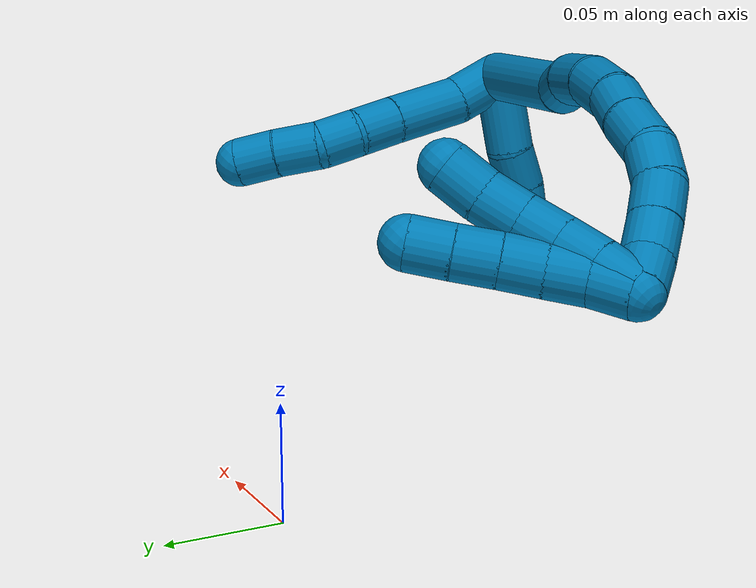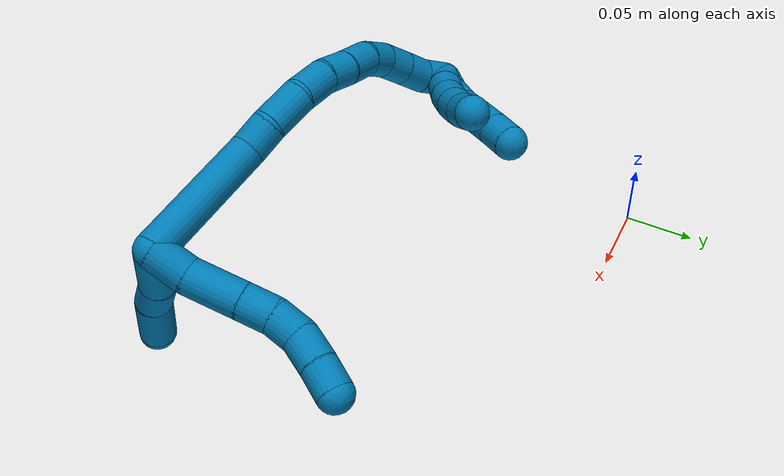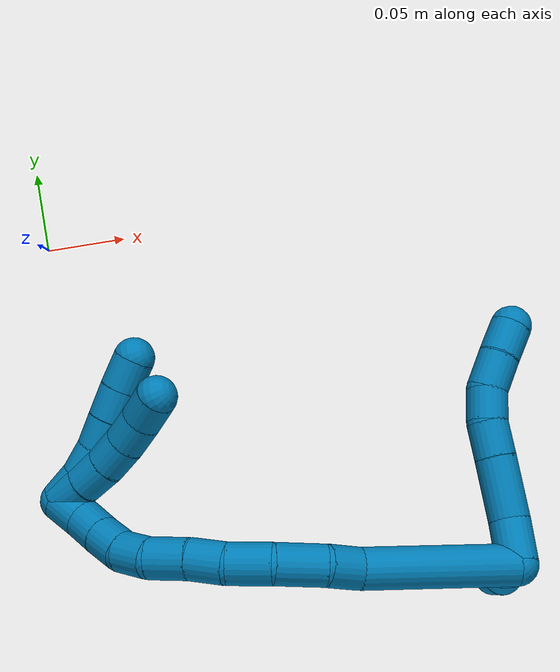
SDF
<sdf version="1.7">
 <world name="default">
  <model name="9">
   <static>0</static>
   <link name="9">
    <collision name="collision-cylinder-e_1_2_8">
     <pose>-0.004805 0.012566 0.000964 -1.49425 -0.364227 0.33789</pose>
     <geometry><cylinder><radius>0.0125</radius><length>0.026976</length></cylinder></geometry>
     <surface>
      <friction><ode><mu>1.16</mu><mu2>1.16</mu2><slip1>0</slip1><slip2>0</slip2></ode></friction>
      <contact><ode><kp>1e+06</kp><kd>1</kd><max_vel>0</max_vel><min_depth>0.001</min_depth></ode></contact>
     </surface>
    </collision>
    <visual name="visual-cylinder-e_1_2_8">
     <pose>-0.004805 0.012566 0.000964 -1.49425 -0.364227 0.33789</pose>
     <geometry><cylinder><radius>0.0125</radius><length>0.026976</length></cylinder></geometry>
     <material><ambient>0 0.490196 0.709804 1</ambient></material>
    </visual>
    <collision name="collision-cylinder-e_2_8_9">
     <pose>-0.020427 0.040636 0.004311 -1.41829 -0.603716 0.522148</pose>
     <geometry><cylinder><radius>0.0125</radius><length>0.038109</length></cylinder></geometry>
     <surface>
      <friction><ode><mu>1.16</mu><mu2>1.16</mu2><slip1>0</slip1><slip2>0</slip2></ode></friction>
      <contact><ode><kp>1e+06</kp><kd>1</kd><max_vel>0</max_vel><min_depth>0.001</min_depth></ode></contact>
     </surface>
    </collision>
    <visual name="visual-cylinder-e_2_8_9">
     <pose>-0.020427 0.040636 0.004311 -1.41829 -0.603716 0.522148</pose>
     <geometry><cylinder><radius>0.0125</radius><length>0.038109</length></cylinder></geometry>
     <material><ambient>0 0.490196 0.709804 1</ambient></material>
    </visual>
    <collision name="collision-cylinder-e_3_9_10">
     <pose>-0.037318 0.065129 0.007893 -1.43818 -0.590176 0.520157</pose>
     <geometry><cylinder><radius>0.0125</radius><length>0.021828</length></cylinder></geometry>
     <surface>
      <friction><ode><mu>1.16</mu><mu2>1.16</mu2><slip1>0</slip1><slip2>0</slip2></ode></friction>
      <contact><ode><kp>1e+06</kp><kd>1</kd><max_vel>0</max_vel><min_depth>0.001</min_depth></ode></contact>
     </surface>
    </collision>
    <visual name="visual-cylinder-e_3_9_10">
     <pose>-0.037318 0.065129 0.007893 -1.43818 -0.590176 0.520157</pose>
     <geometry><cylinder><radius>0.0125</radius><length>0.021828</length></cylinder></geometry>
     <material><ambient>0 0.490196 0.709804 1</ambient></material>
    </visual>
    <collision name="collision-cylinder-e_4_10_11">
     <pose>-0.047385 0.08293 0.011775 -1.2752 -0.409016 0.304918</pose>
     <geometry><cylinder><radius>0.0125</radius><length>0.020082</length></cylinder></geometry>
     <surface>
      <friction><ode><mu>1.16</mu><mu2>1.16</mu2><slip1>0</slip1><slip2>0</slip2></ode></friction>
      <contact><ode><kp>1e+06</kp><kd>1</kd><max_vel>0</max_vel><min_depth>0.001</min_depth></ode></contact>
     </surface>
    </collision>
    <visual name="visual-cylinder-e_4_10_11">
     <pose>-0.047385 0.08293 0.011775 -1.2752 -0.409016 0.304918</pose>
     <geometry><cylinder><radius>0.0125</radius><length>0.020082</length></cylinder></geometry>
     <material><ambient>0 0.490196 0.709804 1</ambient></material>
    </visual>
    <collision name="collision-cylinder-e_5_11_12">
     <pose>-0.05381 0.100823 0.020612 -0.975267 -0.218222 0.116066</pose>
     <geometry><cylinder><radius>0.0125</radius><length>0.022468</length></cylinder></geometry>
     <surface>
      <friction><ode><mu>1.16</mu><mu2>1.16</mu2><slip1>0</slip1><slip2>0</slip2></ode></friction>
      <contact><ode><kp>1e+06</kp><kd>1</kd><max_vel>0</max_vel><min_depth>0.001</min_depth></ode></contact>
     </surface>
    </collision>
    <visual name="visual-cylinder-e_5_11_12">
     <pose>-0.05381 0.100823 0.020612 -0.975267 -0.218222 0.116066</pose>
     <geometry><cylinder><radius>0.0125</radius><length>0.022468</length></cylinder></geometry>
     <material><ambient>0 0.490196 0.709804 1</ambient></material>
    </visual>
    <collision name="collision-cylinder-e_6_12_6">
     <pose>-0.057705 0.11846 0.032248 -1.00083 -0.142943 0.078261</pose>
     <geometry><cylinder><radius>0.0125</radius><length>0.020537</length></cylinder></geometry>
     <surface>
      <friction><ode><mu>1.16</mu><mu2>1.16</mu2><slip1>0</slip1><slip2>0</slip2></ode></friction>
      <contact><ode><kp>1e+06</kp><kd>1</kd><max_vel>0</max_vel><min_depth>0.001</min_depth></ode></contact>
     </surface>
    </collision>
    <visual name="visual-cylinder-e_6_12_6">
     <pose>-0.057705 0.11846 0.032248 -1.00083 -0.142943 0.078261</pose>
     <geometry><cylinder><radius>0.0125</radius><length>0.020537</length></cylinder></geometry>
     <material><ambient>0 0.490196 0.709804 1</ambient></material>
    </visual>
    <collision name="collision-cylinder-e_1_2_13">
     <pose>0.012883 0.011183 -0.010337 -2.31692 0.702156 -1.39416</pose>
     <geometry><cylinder><radius>0.0125</radius><length>0.039895</length></cylinder></geometry>
     <surface>
      <friction><ode><mu>1.16</mu><mu2>1.16</mu2><slip1>0</slip1><slip2>0</slip2></ode></friction>
      <contact><ode><kp>1e+06</kp><kd>1</kd><max_vel>0</max_vel><min_depth>0.001</min_depth></ode></contact>
     </surface>
    </collision>
    <visual name="visual-cylinder-e_1_2_13">
     <pose>0.012883 0.011183 -0.010337 -2.31692 0.702156 -1.39416</pose>
     <geometry><cylinder><radius>0.0125</radius><length>0.039895</length></cylinder></geometry>
     <material><ambient>0 0.490196 0.709804 1</ambient></material>
    </visual>
    <collision name="collision-cylinder-e_2_13_14">
     <pose>0.034499 0.027073 -0.025614 -2.38032 0.907549 -1.76741</pose>
     <geometry><cylinder><radius>0.0125</radius><length>0.022164</length></cylinder></geometry>
     <surface>
      <friction><ode><mu>1.16</mu><mu2>1.16</mu2><slip1>0</slip1><slip2>0</slip2></ode></friction>
      <contact><ode><kp>1e+06</kp><kd>1</kd><max_vel>0</max_vel><min_depth>0.001</min_depth></ode></contact>
     </surface>
    </collision>
    <visual name="visual-cylinder-e_2_13_14">
     <pose>0.034499 0.027073 -0.025614 -2.38032 0.907549 -1.76741</pose>
     <geometry><cylinder><radius>0.0125</radius><length>0.022164</length></cylinder></geometry>
     <material><ambient>0 0.490196 0.709804 1</ambient></material>
    </visual>
    <collision name="collision-cylinder-e_3_14_5">
     <pose>0.05561 0.042894 -0.039671 -2.25781 0.710915 -1.33065</pose>
     <geometry><cylinder><radius>0.0125</radius><length>0.037942</length></cylinder></geometry>
     <surface>
      <friction><ode><mu>1.16</mu><mu2>1.16</mu2><slip1>0</slip1><slip2>0</slip2></ode></friction>
      <contact><ode><kp>1e+06</kp><kd>1</kd><max_vel>0</max_vel><min_depth>0.001</min_depth></ode></contact>
     </surface>
    </collision>
    <visual name="visual-cylinder-e_3_14_5">
     <pose>0.05561 0.042894 -0.039671 -2.25781 0.710915 -1.33065</pose>
     <geometry><cylinder><radius>0.0125</radius><length>0.037942</length></cylinder></geometry>
     <material><ambient>0 0.490196 0.709804 1</ambient></material>
    </visual>
    <collision name="collision-cylinder-e_1_2_15">
     <pose>-0.029139 -0.005591 -0.036042 2.98771 -0.674073 -2.70846</pose>
     <geometry><cylinder><radius>0.0125</radius><length>0.093367</length></cylinder></geometry>
     <surface>
      <friction><ode><mu>1.16</mu><mu2>1.16</mu2><slip1>0</slip1><slip2>0</slip2></ode></friction>
      <contact><ode><kp>1e+06</kp><kd>1</kd><max_vel>0</max_vel><min_depth>0.001</min_depth></ode></contact>
     </surface>
    </collision>
    <visual name="visual-cylinder-e_1_2_15">
     <pose>-0.029139 -0.005591 -0.036042 2.98771 -0.674073 -2.70846</pose>
     <geometry><cylinder><radius>0.0125</radius><length>0.093367</length></cylinder></geometry>
     <material><ambient>0 0.490196 0.709804 1</ambient></material>
    </visual>
    <collision name="collision-cylinder-e_2_15_16">
     <pose>-0.067122 -0.013394 -0.077859 2.77561 -0.960612 -2.45899</pose>
     <geometry><cylinder><radius>0.0125</radius><length>0.021583</length></cylinder></geometry>
     <surface>
      <friction><ode><mu>1.16</mu><mu2>1.16</mu2><slip1>0</slip1><slip2>0</slip2></ode></friction>
      <contact><ode><kp>1e+06</kp><kd>1</kd><max_vel>0</max_vel><min_depth>0.001</min_depth></ode></contact>
     </surface>
    </collision>
    <visual name="visual-cylinder-e_2_15_16">
     <pose>-0.067122 -0.013394 -0.077859 2.77561 -0.960612 -2.45899</pose>
     <geometry><cylinder><radius>0.0125</radius><length>0.021583</length></cylinder></geometry>
     <material><ambient>0 0.490196 0.709804 1</ambient></material>
    </visual>
    <collision name="collision-cylinder-e_3_16_17">
     <pose>-0.086211 -0.017103 -0.094795 3.00835 -0.73814 -2.79996</pose>
     <geometry><cylinder><radius>0.0125</radius><length>0.030449</length></cylinder></geometry>
     <surface>
      <friction><ode><mu>1.16</mu><mu2>1.16</mu2><slip1>0</slip1><slip2>0</slip2></ode></friction>
      <contact><ode><kp>1e+06</kp><kd>1</kd><max_vel>0</max_vel><min_depth>0.001</min_depth></ode></contact>
     </surface>
    </collision>
    <visual name="visual-cylinder-e_3_16_17">
     <pose>-0.086211 -0.017103 -0.094795 3.00835 -0.73814 -2.79996</pose>
     <geometry><cylinder><radius>0.0125</radius><length>0.030449</length></cylinder></geometry>
     <material><ambient>0 0.490196 0.709804 1</ambient></material>
    </visual>
    <collision name="collision-cylinder-e_4_17_18">
     <pose>-0.103161 -0.018169 -0.117531 -3.10443 -0.524845 3.00346</pose>
     <geometry><cylinder><radius>0.0125</radius><length>0.026766</length></cylinder></geometry>
     <surface>
      <friction><ode><mu>1.16</mu><mu2>1.16</mu2><slip1>0</slip1><slip2>0</slip2></ode></friction>
      <contact><ode><kp>1e+06</kp><kd>1</kd><max_vel>0</max_vel><min_depth>0.001</min_depth></ode></contact>
     </surface>
    </collision>
    <visual name="visual-cylinder-e_4_17_18">
     <pose>-0.103161 -0.018169 -0.117531 -3.10443 -0.524845 3.00346</pose>
     <geometry><cylinder><radius>0.0125</radius><length>0.026766</length></cylinder></geometry>
     <material><ambient>0 0.490196 0.709804 1</ambient></material>
    </visual>
    <collision name="collision-cylinder-e_5_18_19">
     <pose>-0.114458 -0.015134 -0.138837 -2.88008 -0.427574 2.05234</pose>
     <geometry><cylinder><radius>0.0125</radius><length>0.022144</length></cylinder></geometry>
     <surface>
      <friction><ode><mu>1.16</mu><mu2>1.16</mu2><slip1>0</slip1><slip2>0</slip2></ode></friction>
      <contact><ode><kp>1e+06</kp><kd>1</kd><max_vel>0</max_vel><min_depth>0.001</min_depth></ode></contact>
     </surface>
    </collision>
    <visual name="visual-cylinder-e_5_18_19">
     <pose>-0.114458 -0.015134 -0.138837 -2.88008 -0.427574 2.05234</pose>
     <geometry><cylinder><radius>0.0125</radius><length>0.022144</length></cylinder></geometry>
     <material><ambient>0 0.490196 0.709804 1</ambient></material>
    </visual>
    <collision name="collision-cylinder-e_6_19_20">
     <pose>-0.12332 -0.010365 -0.160164 -2.95702 -0.34737 2.17083</pose>
     <geometry><cylinder><radius>0.0125</radius><length>0.025088</length></cylinder></geometry>
     <surface>
      <friction><ode><mu>1.16</mu><mu2>1.16</mu2><slip1>0</slip1><slip2>0</slip2></ode></friction>
      <contact><ode><kp>1e+06</kp><kd>1</kd><max_vel>0</max_vel><min_depth>0.001</min_depth></ode></contact>
     </surface>
    </collision>
    <visual name="visual-cylinder-e_6_19_20">
     <pose>-0.12332 -0.010365 -0.160164 -2.95702 -0.34737 2.17083</pose>
     <geometry><cylinder><radius>0.0125</radius><length>0.025088</length></cylinder></geometry>
     <material><ambient>0 0.490196 0.709804 1</ambient></material>
    </visual>
    <collision name="collision-cylinder-e_7_20_21">
     <pose>-0.129696 -0.00354 -0.180572 -2.6552 -0.208179 0.797056</pose>
     <geometry><cylinder><radius>0.0125</radius><length>0.020379</length></cylinder></geometry>
     <surface>
      <friction><ode><mu>1.16</mu><mu2>1.16</mu2><slip1>0</slip1><slip2>0</slip2></ode></friction>
      <contact><ode><kp>1e+06</kp><kd>1</kd><max_vel>0</max_vel><min_depth>0.001</min_depth></ode></contact>
     </surface>
    </collision>
    <visual name="visual-cylinder-e_7_20_21">
     <pose>-0.129696 -0.00354 -0.180572 -2.6552 -0.208179 0.797056</pose>
     <geometry><cylinder><radius>0.0125</radius><length>0.020379</length></cylinder></geometry>
     <material><ambient>0 0.490196 0.709804 1</ambient></material>
    </visual>
    <collision name="collision-cylinder-e_8_21_22">
     <pose>-0.134063 0.008184 -0.196097 -2.33064 -0.227977 0.521268</pose>
     <geometry><cylinder><radius>0.0125</radius><length>0.020005</length></cylinder></geometry>
     <surface>
      <friction><ode><mu>1.16</mu><mu2>1.16</mu2><slip1>0</slip1><slip2>0</slip2></ode></friction>
      <contact><ode><kp>1e+06</kp><kd>1</kd><max_vel>0</max_vel><min_depth>0.001</min_depth></ode></contact>
     </surface>
    </collision>
    <visual name="visual-cylinder-e_8_21_22">
     <pose>-0.134063 0.008184 -0.196097 -2.33064 -0.227977 0.521268</pose>
     <geometry><cylinder><radius>0.0125</radius><length>0.020005</length></cylinder></geometry>
     <material><ambient>0 0.490196 0.709804 1</ambient></material>
    </visual>
    <collision name="collision-cylinder-e_9_22_23">
     <pose>-0.138773 0.022656 -0.209214 -2.28377 -0.24509 0.526163</pose>
     <geometry><cylinder><radius>0.0125</radius><length>0.020191</length></cylinder></geometry>
     <surface>
      <friction><ode><mu>1.16</mu><mu2>1.16</mu2><slip1>0</slip1><slip2>0</slip2></ode></friction>
      <contact><ode><kp>1e+06</kp><kd>1</kd><max_vel>0</max_vel><min_depth>0.001</min_depth></ode></contact>
     </surface>
    </collision>
    <visual name="visual-cylinder-e_9_22_23">
     <pose>-0.138773 0.022656 -0.209214 -2.28377 -0.24509 0.526163</pose>
     <geometry><cylinder><radius>0.0125</radius><length>0.020191</length></cylinder></geometry>
     <material><ambient>0 0.490196 0.709804 1</ambient></material>
    </visual>
    <collision name="collision-cylinder-e_10_23_1">
     <pose>-0.145852 0.036565 -0.221668 -2.32004 -0.480614 1.02493</pose>
     <geometry><cylinder><radius>0.0125</radius><length>0.020028</length></cylinder></geometry>
     <surface>
      <friction><ode><mu>1.16</mu><mu2>1.16</mu2><slip1>0</slip1><slip2>0</slip2></ode></friction>
      <contact><ode><kp>1e+06</kp><kd>1</kd><max_vel>0</max_vel><min_depth>0.001</min_depth></ode></contact>
     </surface>
    </collision>
    <visual name="visual-cylinder-e_10_23_1">
     <pose>-0.145852 0.036565 -0.221668 -2.32004 -0.480614 1.02493</pose>
     <geometry><cylinder><radius>0.0125</radius><length>0.020028</length></cylinder></geometry>
     <material><ambient>0 0.490196 0.709804 1</ambient></material>
    </visual>
    <collision name="collision-cylinder-e_1_1_24">
     <pose>-0.151824 0.044447 -0.217903 -0.139744 -0.134678 0.00944</pose>
     <geometry><cylinder><radius>0.0125</radius><length>0.02</length></cylinder></geometry>
     <surface>
      <friction><ode><mu>1.16</mu><mu2>1.16</mu2><slip1>0</slip1><slip2>0</slip2></ode></friction>
      <contact><ode><kp>1e+06</kp><kd>1</kd><max_vel>0</max_vel><min_depth>0.001</min_depth></ode></contact>
     </surface>
    </collision>
    <visual name="visual-cylinder-e_1_1_24">
     <pose>-0.151824 0.044447 -0.217903 -0.139744 -0.134678 0.00944</pose>
     <geometry><cylinder><radius>0.0125</radius><length>0.02</length></cylinder></geometry>
     <material><ambient>0 0.490196 0.709804 1</ambient></material>
    </visual>
    <collision name="collision-cylinder-e_2_24_25">
     <pose>-0.154823 0.047782 -0.198423 -0.199503 -0.166306 0.016683</pose>
     <geometry><cylinder><radius>0.0125</radius><length>0.02</length></cylinder></geometry>
     <surface>
      <friction><ode><mu>1.16</mu><mu2>1.16</mu2><slip1>0</slip1><slip2>0</slip2></ode></friction>
      <contact><ode><kp>1e+06</kp><kd>1</kd><max_vel>0</max_vel><min_depth>0.001</min_depth></ode></contact>
     </surface>
    </collision>
    <visual name="visual-cylinder-e_2_24_25">
     <pose>-0.154823 0.047782 -0.198423 -0.199503 -0.166306 0.016683</pose>
     <geometry><cylinder><radius>0.0125</radius><length>0.02</length></cylinder></geometry>
     <material><ambient>0 0.490196 0.709804 1</ambient></material>
    </visual>
    <collision name="collision-cylinder-e_3_25_26">
     <pose>-0.159315 0.052021 -0.179444 -0.240543 -0.2877 0.035008</pose>
     <geometry><cylinder><radius>0.0125</radius><length>0.02</length></cylinder></geometry>
     <surface>
      <friction><ode><mu>1.16</mu><mu2>1.16</mu2><slip1>0</slip1><slip2>0</slip2></ode></friction>
      <contact><ode><kp>1e+06</kp><kd>1</kd><max_vel>0</max_vel><min_depth>0.001</min_depth></ode></contact>
     </surface>
    </collision>
    <visual name="visual-cylinder-e_3_25_26">
     <pose>-0.159315 0.052021 -0.179444 -0.240543 -0.2877 0.035008</pose>
     <geometry><cylinder><radius>0.0125</radius><length>0.02</length></cylinder></geometry>
     <material><ambient>0 0.490196 0.709804 1</ambient></material>
    </visual>
    <collision name="collision-cylinder-e_4_26_27">
     <pose>-0.165979 0.056372 -0.161126 -0.225593 -0.392597 0.045045</pose>
     <geometry><cylinder><radius>0.0125</radius><length>0.02</length></cylinder></geometry>
     <surface>
      <friction><ode><mu>1.16</mu><mu2>1.16</mu2><slip1>0</slip1><slip2>0</slip2></ode></friction>
      <contact><ode><kp>1e+06</kp><kd>1</kd><max_vel>0</max_vel><min_depth>0.001</min_depth></ode></contact>
     </surface>
    </collision>
    <visual name="visual-cylinder-e_4_26_27">
     <pose>-0.165979 0.056372 -0.161126 -0.225593 -0.392597 0.045045</pose>
     <geometry><cylinder><radius>0.0125</radius><length>0.02</length></cylinder></geometry>
     <material><ambient>0 0.490196 0.709804 1</ambient></material>
    </visual>
    <collision name="collision-cylinder-e_5_27_4">
     <pose>-0.174443 0.059406 -0.143315 -0.109491 -0.482286 0.026952</pose>
     <geometry><cylinder><radius>0.0125</radius><length>0.02</length></cylinder></geometry>
     <surface>
      <friction><ode><mu>1.16</mu><mu2>1.16</mu2><slip1>0</slip1><slip2>0</slip2></ode></friction>
      <contact><ode><kp>1e+06</kp><kd>1</kd><max_vel>0</max_vel><min_depth>0.001</min_depth></ode></contact>
     </surface>
    </collision>
    <visual name="visual-cylinder-e_5_27_4">
     <pose>-0.174443 0.059406 -0.143315 -0.109491 -0.482286 0.026952</pose>
     <geometry><cylinder><radius>0.0125</radius><length>0.02</length></cylinder></geometry>
     <material><ambient>0 0.490196 0.709804 1</ambient></material>
    </visual>
    <collision name="collision-cylinder-e_1_1_28">
     <pose>-0.152166 0.047422 -0.218873 -0.457686 -0.169231 0.039507</pose>
     <geometry><cylinder><radius>0.0125</radius><length>0.02</length></cylinder></geometry>
     <surface>
      <friction><ode><mu>1.16</mu><mu2>1.16</mu2><slip1>0</slip1><slip2>0</slip2></ode></friction>
      <contact><ode><kp>1e+06</kp><kd>1</kd><max_vel>0</max_vel><min_depth>0.001</min_depth></ode></contact>
     </surface>
    </collision>
    <visual name="visual-cylinder-e_1_1_28">
     <pose>-0.152166 0.047422 -0.218873 -0.457686 -0.169231 0.039507</pose>
     <geometry><cylinder><radius>0.0125</radius><length>0.02</length></cylinder></geometry>
     <material><ambient>0 0.490196 0.709804 1</ambient></material>
    </visual>
    <collision name="collision-cylinder-e_2_28_29">
     <pose>-0.156838 0.057208 -0.202183 -0.60532 -0.303439 0.095411</pose>
     <geometry><cylinder><radius>0.0125</radius><length>0.02</length></cylinder></geometry>
     <surface>
      <friction><ode><mu>1.16</mu><mu2>1.16</mu2><slip1>0</slip1><slip2>0</slip2></ode></friction>
      <contact><ode><kp>1e+06</kp><kd>1</kd><max_vel>0</max_vel><min_depth>0.001</min_depth></ode></contact>
     </surface>
    </collision>
    <visual name="visual-cylinder-e_2_28_29">
     <pose>-0.156838 0.057208 -0.202183 -0.60532 -0.303439 0.095411</pose>
     <geometry><cylinder><radius>0.0125</radius><length>0.02</length></cylinder></geometry>
     <material><ambient>0 0.490196 0.709804 1</ambient></material>
    </visual>
    <collision name="collision-cylinder-e_3_29_30">
     <pose>-0.164158 0.06803 -0.187112 -0.641222 -0.447994 0.151016</pose>
     <geometry><cylinder><radius>0.0125</radius><length>0.02</length></cylinder></geometry>
     <surface>
      <friction><ode><mu>1.16</mu><mu2>1.16</mu2><slip1>0</slip1><slip2>0</slip2></ode></friction>
      <contact><ode><kp>1e+06</kp><kd>1</kd><max_vel>0</max_vel><min_depth>0.001</min_depth></ode></contact>
     </surface>
    </collision>
    <visual name="visual-cylinder-e_3_29_30">
     <pose>-0.164158 0.06803 -0.187112 -0.641222 -0.447994 0.151016</pose>
     <geometry><cylinder><radius>0.0125</radius><length>0.02</length></cylinder></geometry>
     <material><ambient>0 0.490196 0.709804 1</ambient></material>
    </visual>
    <collision name="collision-cylinder-e_4_30_31">
     <pose>-0.172642 0.079012 -0.172713 -0.661823 -0.428272 0.149144</pose>
     <geometry><cylinder><radius>0.0125</radius><length>0.02</length></cylinder></geometry>
     <surface>
      <friction><ode><mu>1.16</mu><mu2>1.16</mu2><slip1>0</slip1><slip2>0</slip2></ode></friction>
      <contact><ode><kp>1e+06</kp><kd>1</kd><max_vel>0</max_vel><min_depth>0.001</min_depth></ode></contact>
     </surface>
    </collision>
    <visual name="visual-cylinder-e_4_30_31">
     <pose>-0.172642 0.079012 -0.172713 -0.661823 -0.428272 0.149144</pose>
     <geometry><cylinder><radius>0.0125</radius><length>0.02</length></cylinder></geometry>
     <material><ambient>0 0.490196 0.709804 1</ambient></material>
    </visual>
    <collision name="collision-cylinder-e_5_31_3">
     <pose>-0.180713 0.090019 -0.1581 -0.629431 -0.402577 0.132657</pose>
     <geometry><cylinder><radius>0.0125</radius><length>0.02</length></cylinder></geometry>
     <surface>
      <friction><ode><mu>1.16</mu><mu2>1.16</mu2><slip1>0</slip1><slip2>0</slip2></ode></friction>
      <contact><ode><kp>1e+06</kp><kd>1</kd><max_vel>0</max_vel><min_depth>0.001</min_depth></ode></contact>
     </surface>
    </collision>
    <visual name="visual-cylinder-e_5_31_3">
     <pose>-0.180713 0.090019 -0.1581 -0.629431 -0.402577 0.132657</pose>
     <geometry><cylinder><radius>0.0125</radius><length>0.02</length></cylinder></geometry>
     <material><ambient>0 0.490196 0.709804 1</ambient></material>
    </visual>
    <collision name="collision-sphere-3">
     <pose>-0.184631 0.095435 -0.150662 0 -0 0</pose>
     <geometry><sphere><radius>0.0125</radius></sphere></geometry>
     <surface>
      <friction><ode><mu>1.16</mu><mu2>1.16</mu2><slip1>0</slip1><slip2>0</slip2></ode></friction>
      <contact><ode><kp>1e+06</kp><kd>1</kd><max_vel>0</max_vel><min_depth>0.001</min_depth></ode></contact>
     </surface>
    </collision>
    <visual name="visual-sphere-3">
     <pose>-0.184631 0.095435 -0.150662 0 -0 0</pose>
     <geometry><sphere><radius>0.0125</radius></sphere></geometry>
     <material><ambient>0 0.490196 0.709804 1</ambient></material>
    </visual>
    <collision name="collision-sphere-31">
     <pose>-0.176795 0.084603 -0.165537 0 -0 0</pose>
     <geometry><sphere><radius>0.0125</radius></sphere></geometry>
     <surface>
      <friction><ode><mu>1.16</mu><mu2>1.16</mu2><slip1>0</slip1><slip2>0</slip2></ode></friction>
      <contact><ode><kp>1e+06</kp><kd>1</kd><max_vel>0</max_vel><min_depth>0.001</min_depth></ode></contact>
     </surface>
    </collision>
    <visual name="visual-sphere-31">
     <pose>-0.176795 0.084603 -0.165537 0 -0 0</pose>
     <geometry><sphere><radius>0.0125</radius></sphere></geometry>
     <material><ambient>0 0.490196 0.709804 1</ambient></material>
    </visual>
    <collision name="collision-sphere-30">
     <pose>-0.168489 0.073421 -0.17989 0 -0 0</pose>
     <geometry><sphere><radius>0.0125</radius></sphere></geometry>
     <surface>
      <friction><ode><mu>1.16</mu><mu2>1.16</mu2><slip1>0</slip1><slip2>0</slip2></ode></friction>
      <contact><ode><kp>1e+06</kp><kd>1</kd><max_vel>0</max_vel><min_depth>0.001</min_depth></ode></contact>
     </surface>
    </collision>
    <visual name="visual-sphere-30">
     <pose>-0.168489 0.073421 -0.17989 0 -0 0</pose>
     <geometry><sphere><radius>0.0125</radius></sphere></geometry>
     <material><ambient>0 0.490196 0.709804 1</ambient></material>
    </visual>
    <collision name="collision-sphere-29">
     <pose>-0.159826 0.062639 -0.194335 0 -0 0</pose>
     <geometry><sphere><radius>0.0125</radius></sphere></geometry>
     <surface>
      <friction><ode><mu>1.16</mu><mu2>1.16</mu2><slip1>0</slip1><slip2>0</slip2></ode></friction>
      <contact><ode><kp>1e+06</kp><kd>1</kd><max_vel>0</max_vel><min_depth>0.001</min_depth></ode></contact>
     </surface>
    </collision>
    <visual name="visual-sphere-29">
     <pose>-0.159826 0.062639 -0.194335 0 -0 0</pose>
     <geometry><sphere><radius>0.0125</radius></sphere></geometry>
     <material><ambient>0 0.490196 0.709804 1</ambient></material>
    </visual>
    <collision name="collision-sphere-28">
     <pose>-0.15385 0.051778 -0.21003 0 -0 0</pose>
     <geometry><sphere><radius>0.0125</radius></sphere></geometry>
     <surface>
      <friction><ode><mu>1.16</mu><mu2>1.16</mu2><slip1>0</slip1><slip2>0</slip2></ode></friction>
      <contact><ode><kp>1e+06</kp><kd>1</kd><max_vel>0</max_vel><min_depth>0.001</min_depth></ode></contact>
     </surface>
    </collision>
    <visual name="visual-sphere-28">
     <pose>-0.15385 0.051778 -0.21003 0 -0 0</pose>
     <geometry><sphere><radius>0.0125</radius></sphere></geometry>
     <material><ambient>0 0.490196 0.709804 1</ambient></material>
    </visual>
    <collision name="collision-sphere-4">
     <pose>-0.179081 0.060375 -0.134508 0 -0 0</pose>
     <geometry><sphere><radius>0.0125</radius></sphere></geometry>
     <surface>
      <friction><ode><mu>1.16</mu><mu2>1.16</mu2><slip1>0</slip1><slip2>0</slip2></ode></friction>
      <contact><ode><kp>1e+06</kp><kd>1</kd><max_vel>0</max_vel><min_depth>0.001</min_depth></ode></contact>
     </surface>
    </collision>
    <visual name="visual-sphere-4">
     <pose>-0.179081 0.060375 -0.134508 0 -0 0</pose>
     <geometry><sphere><radius>0.0125</radius></sphere></geometry>
     <material><ambient>0 0.490196 0.709804 1</ambient></material>
    </visual>
    <collision name="collision-sphere-27">
     <pose>-0.169805 0.058438 -0.152121 0 -0 0</pose>
     <geometry><sphere><radius>0.0125</radius></sphere></geometry>
     <surface>
      <friction><ode><mu>1.16</mu><mu2>1.16</mu2><slip1>0</slip1><slip2>0</slip2></ode></friction>
      <contact><ode><kp>1e+06</kp><kd>1</kd><max_vel>0</max_vel><min_depth>0.001</min_depth></ode></contact>
     </surface>
    </collision>
    <visual name="visual-sphere-27">
     <pose>-0.169805 0.058438 -0.152121 0 -0 0</pose>
     <geometry><sphere><radius>0.0125</radius></sphere></geometry>
     <material><ambient>0 0.490196 0.709804 1</ambient></material>
    </visual>
    <collision name="collision-sphere-26">
     <pose>-0.162153 0.054305 -0.170131 0 -0 0</pose>
     <geometry><sphere><radius>0.0125</radius></sphere></geometry>
     <surface>
      <friction><ode><mu>1.16</mu><mu2>1.16</mu2><slip1>0</slip1><slip2>0</slip2></ode></friction>
      <contact><ode><kp>1e+06</kp><kd>1</kd><max_vel>0</max_vel><min_depth>0.001</min_depth></ode></contact>
     </surface>
    </collision>
    <visual name="visual-sphere-26">
     <pose>-0.162153 0.054305 -0.170131 0 -0 0</pose>
     <geometry><sphere><radius>0.0125</radius></sphere></geometry>
     <material><ambient>0 0.490196 0.709804 1</ambient></material>
    </visual>
    <collision name="collision-sphere-25">
     <pose>-0.156478 0.049736 -0.188757 0 -0 0</pose>
     <geometry><sphere><radius>0.0125</radius></sphere></geometry>
     <surface>
      <friction><ode><mu>1.16</mu><mu2>1.16</mu2><slip1>0</slip1><slip2>0</slip2></ode></friction>
      <contact><ode><kp>1e+06</kp><kd>1</kd><max_vel>0</max_vel><min_depth>0.001</min_depth></ode></contact>
     </surface>
    </collision>
    <visual name="visual-sphere-25">
     <pose>-0.156478 0.049736 -0.188757 0 -0 0</pose>
     <geometry><sphere><radius>0.0125</radius></sphere></geometry>
     <material><ambient>0 0.490196 0.709804 1</ambient></material>
    </visual>
    <collision name="collision-sphere-24">
     <pose>-0.153167 0.045827 -0.20809 0 -0 0</pose>
     <geometry><sphere><radius>0.0125</radius></sphere></geometry>
     <surface>
      <friction><ode><mu>1.16</mu><mu2>1.16</mu2><slip1>0</slip1><slip2>0</slip2></ode></friction>
      <contact><ode><kp>1e+06</kp><kd>1</kd><max_vel>0</max_vel><min_depth>0.001</min_depth></ode></contact>
     </surface>
    </collision>
    <visual name="visual-sphere-24">
     <pose>-0.153167 0.045827 -0.20809 0 -0 0</pose>
     <geometry><sphere><radius>0.0125</radius></sphere></geometry>
     <material><ambient>0 0.490196 0.709804 1</ambient></material>
    </visual>
    <collision name="collision-sphere-1">
     <pose>-0.150482 0.043067 -0.227716 0 -0 0</pose>
     <geometry><sphere><radius>0.0125</radius></sphere></geometry>
     <surface>
      <friction><ode><mu>1.16</mu><mu2>1.16</mu2><slip1>0</slip1><slip2>0</slip2></ode></friction>
      <contact><ode><kp>1e+06</kp><kd>1</kd><max_vel>0</max_vel><min_depth>0.001</min_depth></ode></contact>
     </surface>
    </collision>
    <visual name="visual-sphere-1">
     <pose>-0.150482 0.043067 -0.227716 0 -0 0</pose>
     <geometry><sphere><radius>0.0125</radius></sphere></geometry>
     <material><ambient>0 0.490196 0.709804 1</ambient></material>
    </visual>
    <collision name="collision-sphere-23">
     <pose>-0.141223 0.030064 -0.21562 0 -0 0</pose>
     <geometry><sphere><radius>0.0125</radius></sphere></geometry>
     <surface>
      <friction><ode><mu>1.16</mu><mu2>1.16</mu2><slip1>0</slip1><slip2>0</slip2></ode></friction>
      <contact><ode><kp>1e+06</kp><kd>1</kd><max_vel>0</max_vel><min_depth>0.001</min_depth></ode></contact>
     </surface>
    </collision>
    <visual name="visual-sphere-23">
     <pose>-0.141223 0.030064 -0.21562 0 -0 0</pose>
     <geometry><sphere><radius>0.0125</radius></sphere></geometry>
     <material><ambient>0 0.490196 0.709804 1</ambient></material>
    </visual>
    <collision name="collision-sphere-22">
     <pose>-0.136323 0.015247 -0.202808 0 -0 0</pose>
     <geometry><sphere><radius>0.0125</radius></sphere></geometry>
     <surface>
      <friction><ode><mu>1.16</mu><mu2>1.16</mu2><slip1>0</slip1><slip2>0</slip2></ode></friction>
      <contact><ode><kp>1e+06</kp><kd>1</kd><max_vel>0</max_vel><min_depth>0.001</min_depth></ode></contact>
     </surface>
    </collision>
    <visual name="visual-sphere-22">
     <pose>-0.136323 0.015247 -0.202808 0 -0 0</pose>
     <geometry><sphere><radius>0.0125</radius></sphere></geometry>
     <material><ambient>0 0.490196 0.709804 1</ambient></material>
    </visual>
    <collision name="collision-sphere-21">
     <pose>-0.131802 0.00112 -0.189385 0 -0 0</pose>
     <geometry><sphere><radius>0.0125</radius></sphere></geometry>
     <surface>
      <friction><ode><mu>1.16</mu><mu2>1.16</mu2><slip1>0</slip1><slip2>0</slip2></ode></friction>
      <contact><ode><kp>1e+06</kp><kd>1</kd><max_vel>0</max_vel><min_depth>0.001</min_depth></ode></contact>
     </surface>
    </collision>
    <visual name="visual-sphere-21">
     <pose>-0.131802 0.00112 -0.189385 0 -0 0</pose>
     <geometry><sphere><radius>0.0125</radius></sphere></geometry>
     <material><ambient>0 0.490196 0.709804 1</ambient></material>
    </visual>
    <collision name="collision-sphere-12">
     <pose>-0.056243 0.109903 0.026764 0 -0 0</pose>
     <geometry><sphere><radius>0.0125</radius></sphere></geometry>
     <surface>
      <friction><ode><mu>1.16</mu><mu2>1.16</mu2><slip1>0</slip1><slip2>0</slip2></ode></friction>
      <contact><ode><kp>1e+06</kp><kd>1</kd><max_vel>0</max_vel><min_depth>0.001</min_depth></ode></contact>
     </surface>
    </collision>
    <visual name="visual-sphere-12">
     <pose>-0.056243 0.109903 0.026764 0 -0 0</pose>
     <geometry><sphere><radius>0.0125</radius></sphere></geometry>
     <material><ambient>0 0.490196 0.709804 1</ambient></material>
    </visual>
    <collision name="collision-sphere-11">
     <pose>-0.051378 0.091743 0.014459 0 -0 0</pose>
     <geometry><sphere><radius>0.0125</radius></sphere></geometry>
     <surface>
      <friction><ode><mu>1.16</mu><mu2>1.16</mu2><slip1>0</slip1><slip2>0</slip2></ode></friction>
      <contact><ode><kp>1e+06</kp><kd>1</kd><max_vel>0</max_vel><min_depth>0.001</min_depth></ode></contact>
     </surface>
    </collision>
    <visual name="visual-sphere-11">
     <pose>-0.051378 0.091743 0.014459 0 -0 0</pose>
     <geometry><sphere><radius>0.0125</radius></sphere></geometry>
     <material><ambient>0 0.490196 0.709804 1</ambient></material>
    </visual>
    <collision name="collision-sphere-10">
     <pose>-0.043392 0.074117 0.009092 0 -0 0</pose>
     <geometry><sphere><radius>0.0125</radius></sphere></geometry>
     <surface>
      <friction><ode><mu>1.16</mu><mu2>1.16</mu2><slip1>0</slip1><slip2>0</slip2></ode></friction>
      <contact><ode><kp>1e+06</kp><kd>1</kd><max_vel>0</max_vel><min_depth>0.001</min_depth></ode></contact>
     </surface>
    </collision>
    <visual name="visual-sphere-10">
     <pose>-0.043392 0.074117 0.009092 0 -0 0</pose>
     <geometry><sphere><radius>0.0125</radius></sphere></geometry>
     <material><ambient>0 0.490196 0.709804 1</ambient></material>
    </visual>
    <collision name="collision-sphere-9">
     <pose>-0.031244 0.05614 0.006694 0 -0 0</pose>
     <geometry><sphere><radius>0.0125</radius></sphere></geometry>
     <surface>
      <friction><ode><mu>1.16</mu><mu2>1.16</mu2><slip1>0</slip1><slip2>0</slip2></ode></friction>
      <contact><ode><kp>1e+06</kp><kd>1</kd><max_vel>0</max_vel><min_depth>0.001</min_depth></ode></contact>
     </surface>
    </collision>
    <visual name="visual-sphere-9">
     <pose>-0.031244 0.05614 0.006694 0 -0 0</pose>
     <geometry><sphere><radius>0.0125</radius></sphere></geometry>
     <material><ambient>0 0.490196 0.709804 1</ambient></material>
    </visual>
    <collision name="collision-sphere-2">
     <geometry><sphere><radius>0.0125</radius></sphere></geometry>
     <surface>
      <friction><ode><mu>1.16</mu><mu2>1.16</mu2><slip1>0</slip1><slip2>0</slip2></ode></friction>
      <contact><ode><kp>1e+06</kp><kd>1</kd><max_vel>0</max_vel><min_depth>0.001</min_depth></ode></contact>
     </surface>
    </collision>
    <visual name="visual-sphere-2">
     <geometry><sphere><radius>0.0125</radius></sphere></geometry>
     <material><ambient>0 0.490196 0.709804 1</ambient></material>
    </visual>
    <collision name="collision-sphere-19">
     <pose>-0.119049 -0.012529 -0.14857 0 -0 0</pose>
     <geometry><sphere><radius>0.0125</radius></sphere></geometry>
     <surface>
      <friction><ode><mu>1.16</mu><mu2>1.16</mu2><slip1>0</slip1><slip2>0</slip2></ode></friction>
      <contact><ode><kp>1e+06</kp><kd>1</kd><max_vel>0</max_vel><min_depth>0.001</min_depth></ode></contact>
     </surface>
    </collision>
    <visual name="visual-sphere-19">
     <pose>-0.119049 -0.012529 -0.14857 0 -0 0</pose>
     <geometry><sphere><radius>0.0125</radius></sphere></geometry>
     <material><ambient>0 0.490196 0.709804 1</ambient></material>
    </visual>
    <collision name="collision-sphere-8">
     <pose>-0.009609 0.025132 0.001928 0 -0 0</pose>
     <geometry><sphere><radius>0.0125</radius></sphere></geometry>
     <surface>
      <friction><ode><mu>1.16</mu><mu2>1.16</mu2><slip1>0</slip1><slip2>0</slip2></ode></friction>
      <contact><ode><kp>1e+06</kp><kd>1</kd><max_vel>0</max_vel><min_depth>0.001</min_depth></ode></contact>
     </surface>
    </collision>
    <visual name="visual-sphere-8">
     <pose>-0.009609 0.025132 0.001928 0 -0 0</pose>
     <geometry><sphere><radius>0.0125</radius></sphere></geometry>
     <material><ambient>0 0.490196 0.709804 1</ambient></material>
    </visual>
    <collision name="collision-sphere-6">
     <pose>-0.059168 0.127017 0.037733 0 -0 0</pose>
     <geometry><sphere><radius>0.0125</radius></sphere></geometry>
     <surface>
      <friction><ode><mu>1.16</mu><mu2>1.16</mu2><slip1>0</slip1><slip2>0</slip2></ode></friction>
      <contact><ode><kp>1e+06</kp><kd>1</kd><max_vel>0</max_vel><min_depth>0.001</min_depth></ode></contact>
     </surface>
    </collision>
    <visual name="visual-sphere-6">
     <pose>-0.059168 0.127017 0.037733 0 -0 0</pose>
     <geometry><sphere><radius>0.0125</radius></sphere></geometry>
     <material><ambient>0 0.490196 0.709804 1</ambient></material>
    </visual>
    <collision name="collision-sphere-13">
     <pose>0.025767 0.022366 -0.020674 0 -0 0</pose>
     <geometry><sphere><radius>0.0125</radius></sphere></geometry>
     <surface>
      <friction><ode><mu>1.16</mu><mu2>1.16</mu2><slip1>0</slip1><slip2>0</slip2></ode></friction>
      <contact><ode><kp>1e+06</kp><kd>1</kd><max_vel>0</max_vel><min_depth>0.001</min_depth></ode></contact>
     </surface>
    </collision>
    <visual name="visual-sphere-13">
     <pose>0.025767 0.022366 -0.020674 0 -0 0</pose>
     <geometry><sphere><radius>0.0125</radius></sphere></geometry>
     <material><ambient>0 0.490196 0.709804 1</ambient></material>
    </visual>
    <collision name="collision-sphere-14">
     <pose>0.043231 0.031779 -0.030553 0 -0 0</pose>
     <geometry><sphere><radius>0.0125</radius></sphere></geometry>
     <surface>
      <friction><ode><mu>1.16</mu><mu2>1.16</mu2><slip1>0</slip1><slip2>0</slip2></ode></friction>
      <contact><ode><kp>1e+06</kp><kd>1</kd><max_vel>0</max_vel><min_depth>0.001</min_depth></ode></contact>
     </surface>
    </collision>
    <visual name="visual-sphere-14">
     <pose>0.043231 0.031779 -0.030553 0 -0 0</pose>
     <geometry><sphere><radius>0.0125</radius></sphere></geometry>
     <material><ambient>0 0.490196 0.709804 1</ambient></material>
    </visual>
    <collision name="collision-sphere-5">
     <pose>0.067989 0.054008 -0.048788 0 -0 0</pose>
     <geometry><sphere><radius>0.0125</radius></sphere></geometry>
     <surface>
      <friction><ode><mu>1.16</mu><mu2>1.16</mu2><slip1>0</slip1><slip2>0</slip2></ode></friction>
      <contact><ode><kp>1e+06</kp><kd>1</kd><max_vel>0</max_vel><min_depth>0.001</min_depth></ode></contact>
     </surface>
    </collision>
    <visual name="visual-sphere-5">
     <pose>0.067989 0.054008 -0.048788 0 -0 0</pose>
     <geometry><sphere><radius>0.0125</radius></sphere></geometry>
     <material><ambient>0 0.490196 0.709804 1</ambient></material>
    </visual>
    <collision name="collision-sphere-15">
     <pose>-0.058277 -0.011181 -0.072084 0 -0 0</pose>
     <geometry><sphere><radius>0.0125</radius></sphere></geometry>
     <surface>
      <friction><ode><mu>1.16</mu><mu2>1.16</mu2><slip1>0</slip1><slip2>0</slip2></ode></friction>
      <contact><ode><kp>1e+06</kp><kd>1</kd><max_vel>0</max_vel><min_depth>0.001</min_depth></ode></contact>
     </surface>
    </collision>
    <visual name="visual-sphere-15">
     <pose>-0.058277 -0.011181 -0.072084 0 -0 0</pose>
     <geometry><sphere><radius>0.0125</radius></sphere></geometry>
     <material><ambient>0 0.490196 0.709804 1</ambient></material>
    </visual>
    <collision name="collision-sphere-16">
     <pose>-0.075966 -0.015607 -0.083633 0 -0 0</pose>
     <geometry><sphere><radius>0.0125</radius></sphere></geometry>
     <surface>
      <friction><ode><mu>1.16</mu><mu2>1.16</mu2><slip1>0</slip1><slip2>0</slip2></ode></friction>
      <contact><ode><kp>1e+06</kp><kd>1</kd><max_vel>0</max_vel><min_depth>0.001</min_depth></ode></contact>
     </surface>
    </collision>
    <visual name="visual-sphere-16">
     <pose>-0.075966 -0.015607 -0.083633 0 -0 0</pose>
     <geometry><sphere><radius>0.0125</radius></sphere></geometry>
     <material><ambient>0 0.490196 0.709804 1</ambient></material>
    </visual>
    <collision name="collision-sphere-17">
     <pose>-0.096455 -0.018599 -0.105957 0 -0 0</pose>
     <geometry><sphere><radius>0.0125</radius></sphere></geometry>
     <surface>
      <friction><ode><mu>1.16</mu><mu2>1.16</mu2><slip1>0</slip1><slip2>0</slip2></ode></friction>
      <contact><ode><kp>1e+06</kp><kd>1</kd><max_vel>0</max_vel><min_depth>0.001</min_depth></ode></contact>
     </surface>
    </collision>
    <visual name="visual-sphere-17">
     <pose>-0.096455 -0.018599 -0.105957 0 -0 0</pose>
     <geometry><sphere><radius>0.0125</radius></sphere></geometry>
     <material><ambient>0 0.490196 0.709804 1</ambient></material>
    </visual>
    <collision name="collision-sphere-18">
     <pose>-0.109867 -0.017739 -0.129105 0 -0 0</pose>
     <geometry><sphere><radius>0.0125</radius></sphere></geometry>
     <surface>
      <friction><ode><mu>1.16</mu><mu2>1.16</mu2><slip1>0</slip1><slip2>0</slip2></ode></friction>
      <contact><ode><kp>1e+06</kp><kd>1</kd><max_vel>0</max_vel><min_depth>0.001</min_depth></ode></contact>
     </surface>
    </collision>
    <visual name="visual-sphere-18">
     <pose>-0.109867 -0.017739 -0.129105 0 -0 0</pose>
     <geometry><sphere><radius>0.0125</radius></sphere></geometry>
     <material><ambient>0 0.490196 0.709804 1</ambient></material>
    </visual>
    <collision name="collision-sphere-20">
     <pose>-0.12759 -0.0082 -0.171759 0 -0 0</pose>
     <geometry><sphere><radius>0.0125</radius></sphere></geometry>
     <surface>
      <friction><ode><mu>1.16</mu><mu2>1.16</mu2><slip1>0</slip1><slip2>0</slip2></ode></friction>
      <contact><ode><kp>1e+06</kp><kd>1</kd><max_vel>0</max_vel><min_depth>0.001</min_depth></ode></contact>
     </surface>
    </collision>
    <visual name="visual-sphere-20">
     <pose>-0.12759 -0.0082 -0.171759 0 -0 0</pose>
     <geometry><sphere><radius>0.0125</radius></sphere></geometry>
     <material><ambient>0 0.490196 0.709804 1</ambient></material>
    </visual>
    <inertial>
     <pose>-0.08076 0.030998 -0.095976 0 -0 0</pose>
     <mass>0.75</mass>
     <inertia><ixx>-6.5e-05</ixx><ixy>0</ixy><ixz>0</ixz><iyy>0.0001</iyy><iyz>0</iyz><izz>2.7e-05</izz></inertia>
    </inertial>
   </link>
   <pose>0.255765 -0.235396 0.113832 -1.01916 0.625678 -0.960723</pose>
  </model>
 </world>
</sdf>
